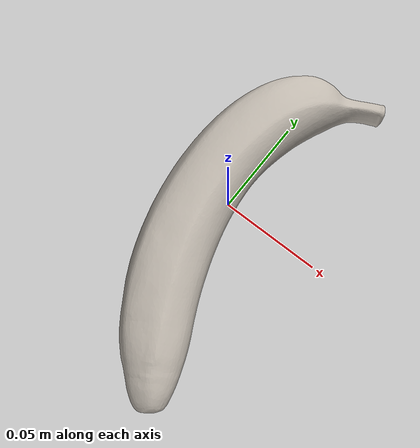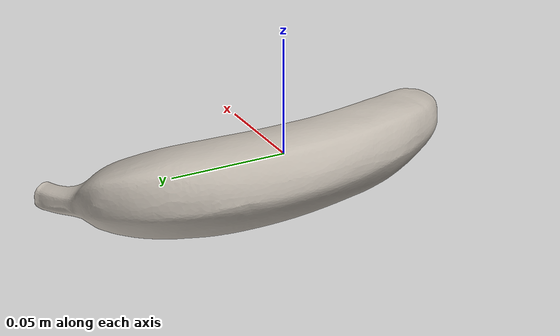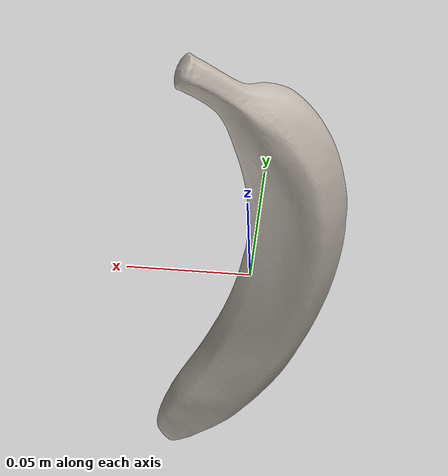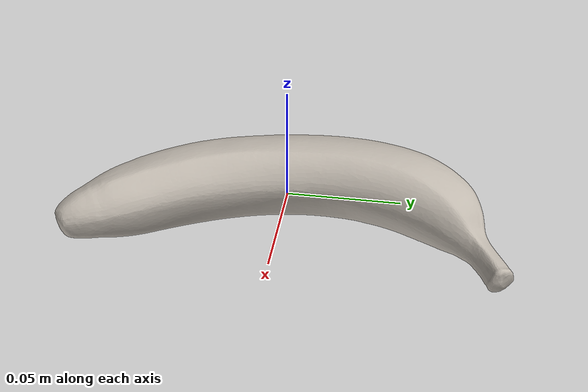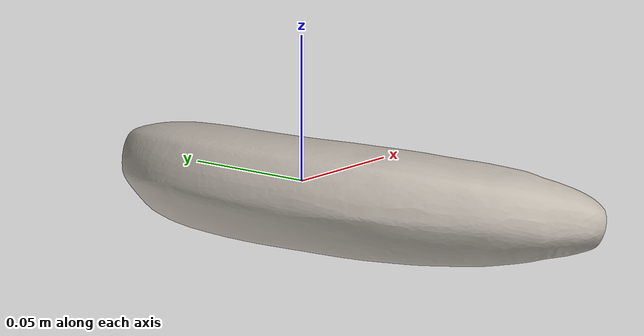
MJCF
<mujoco model="banana">
  <default>
    <default class="visual">
      <geom group="1" type="mesh" contype="0" conaffinity="0"/>
    </default>
    <default class="collision">
      <geom group="0" type="mesh"/>
    </default>
  </default>
  <asset>
    <texture type="2d" name="banana" file="banana.png"/>
    <material name="banana" texture="banana" specular="0.4000000000000001" shininess="0.001"/>
    <mesh name="banana" file="banana.obj"/>
  </asset>
  <worldbody>
    <body>
    <body name="object">
      <geom material="banana" mesh="banana" class="visual"/>
      <geom mesh="banana" class="collision"/>
    </body>
	      <site rgba="0 0 0 0" size="0.005" pos="0 0 -0.04" name="bottom_site" />
	      <site rgba="0 0 0 0" size="0.005" pos="0 0 0.04" name="top_site" />
	      <site rgba="0 0 0 0" size="0.005" pos="0.005 0.005 0" name="horizontal_radius_site" />
   </body>
  </worldbody>
</mujoco>
